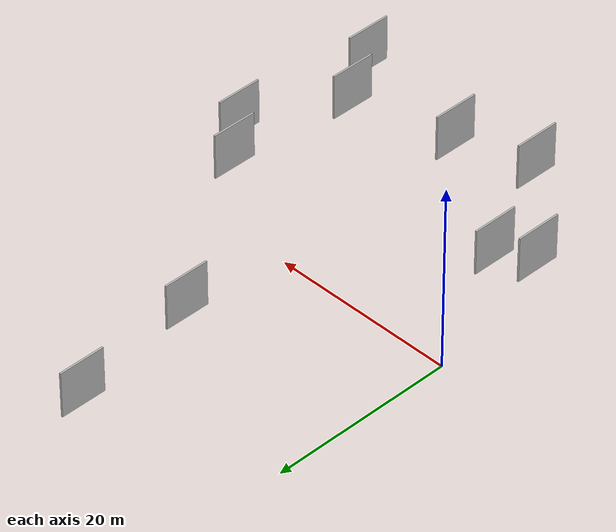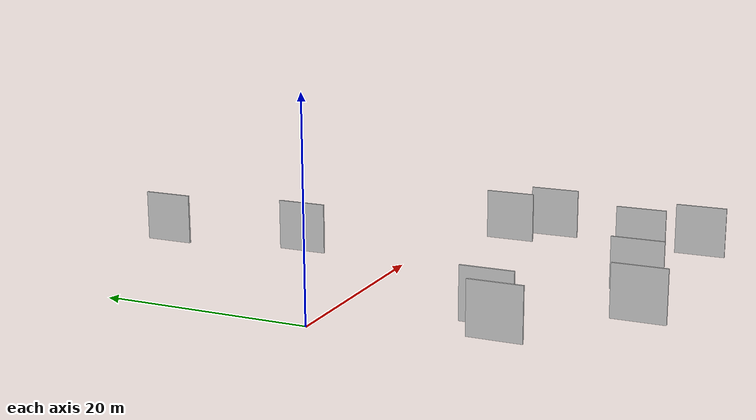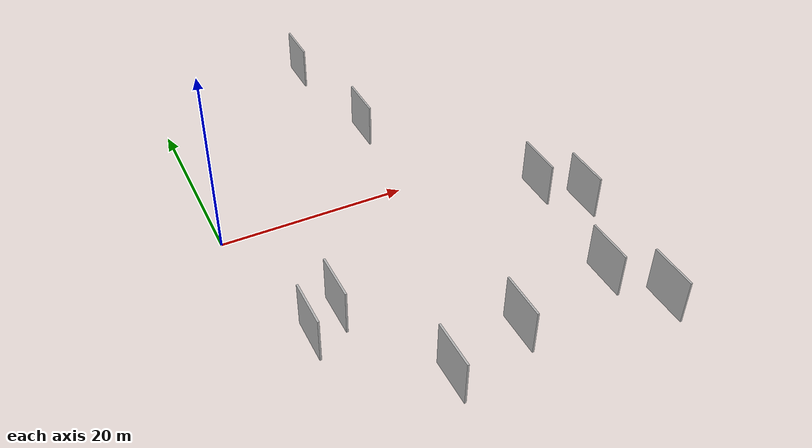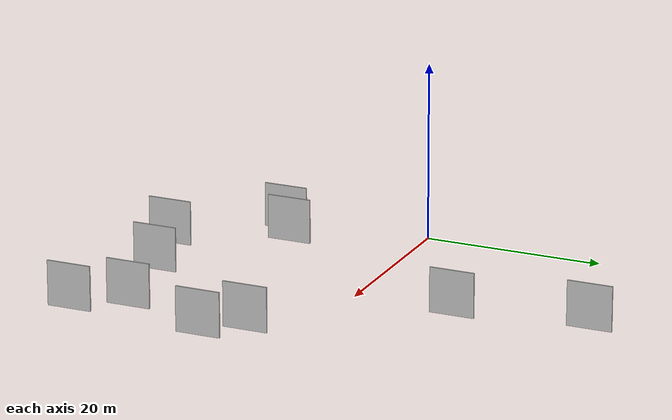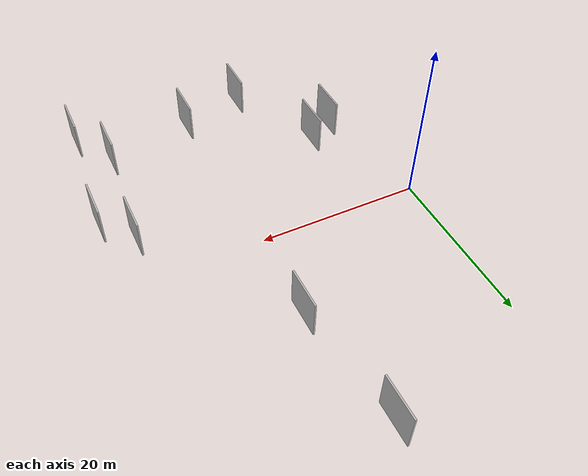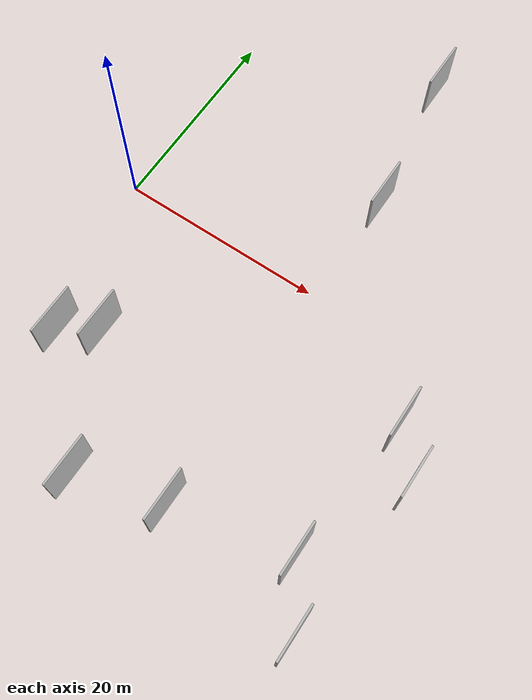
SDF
<sdf version="1.6">
 <world name="default">
  <scene>
   <sky><clouds><speed>12</speed></clouds></sky>
   <ambient>0.4 0.4 0.4 1</ambient>
   <background>0.7 0.7 0.7 1</background>
   <shadows>1</shadows>
  </scene>
  <gravity>0 0 -9.8066</gravity>
  <magnetic_field>6e-06 2.3e-05 -4.2e-05</magnetic_field>
  <physics default="0" name="default_physics" type="ode">
   <ode>
    <solver>
     <type>quick</type>
     <iters>10</iters>
     <sor>1.0</sor>
     <use_dynamic_moi_rescaling>0</use_dynamic_moi_rescaling>
    </solver>
    <constraints>
     <cfm>0</cfm>
     <erp>0.2</erp>
     <contact_max_correcting_vel>100</contact_max_correcting_vel>
     <contact_surface_layer>0.001</contact_surface_layer>
    </constraints>
   </ode>
   <max_step_size>0.004</max_step_size>
   <real_time_factor>1</real_time_factor>
   <real_time_update_rate>250</real_time_update_rate>
  </physics>
  <light name="sun" type="directional">
   <pose>0 0 10 0 0 0</pose>
   <diffuse>0.8 0.8 0.8 1</diffuse>
   <specular>0.2 0.2 0.2 1</specular>
   <attenuation>
    <range>1000</range>
    <constant>0.9</constant>
    <linear>0.01</linear>
    <quadratic>0.001</quadratic>
   </attenuation>
   <direction>-0.5 0.1 -0.9</direction>
  </light>
  <model name="grey_wall_1">
   <static>1</static>
   <pose>12.5830 -25.3363 0.0 0.000000 0.000000 1.570796</pose>
   <link name="link">
    <pose>0 0 2.50 0 0 0</pose>
    <collision name="collision"><geometry><box><size>5.00 0.2 5.00</size></box></geometry></collision>
    <visual name="visual">
     <cast_shadows>0</cast_shadows>
     <geometry><box><size>5.00 0.2 5.00</size></box></geometry>
     <material>
      <script>
       <uri>model://HANNAS_wall/materials/scripts</uri>
       <uri>model://HANNAS_wall/materials/textures</uri>
       <name>vrc/HANNAS_wall</name>
      </script>
     </material>
    </visual>
   </link>
  </model>
  <model name="grey_wall_2">
   <static>1</static>
   <pose>3.3106 -15.6818 0.0 0.000000 0.000000 1.570796</pose>
   <link name="link">
    <pose>0 0 2.50 0 0 0</pose>
    <collision name="collision"><geometry><box><size>5.00 0.2 5.00</size></box></geometry></collision>
    <visual name="visual">
     <cast_shadows>0</cast_shadows>
     <geometry><box><size>5.00 0.2 5.00</size></box></geometry>
     <material>
      <script>
       <uri>model://HANNAS_wall/materials/scripts</uri>
       <uri>model://HANNAS_wall/materials/textures</uri>
       <name>vrc/HANNAS_wall</name>
      </script>
     </material>
    </visual>
   </link>
  </model>
  <model name="grey_wall_3">
   <static>1</static>
   <pose>31.9580 -20.6161 0.0 0.000000 0.000000 1.570796</pose>
   <link name="link">
    <pose>0 0 2.50 0 0 0</pose>
    <collision name="collision"><geometry><box><size>5.00 0.2 5.00</size></box></geometry></collision>
    <visual name="visual">
     <cast_shadows>0</cast_shadows>
     <geometry><box><size>5.00 0.2 5.00</size></box></geometry>
     <material>
      <script>
       <uri>model://HANNAS_wall/materials/scripts</uri>
       <uri>model://HANNAS_wall/materials/textures</uri>
       <name>vrc/HANNAS_wall</name>
      </script>
     </material>
    </visual>
   </link>
  </model>
  <model name="grey_wall_4">
   <static>1</static>
   <pose>33.2869 -6.4464 0.0 0.000000 0.000000 1.570796</pose>
   <link name="link">
    <pose>0 0 2.50 0 0 0</pose>
    <collision name="collision"><geometry><box><size>5.00 0.2 5.00</size></box></geometry></collision>
    <visual name="visual">
     <cast_shadows>0</cast_shadows>
     <geometry><box><size>5.00 0.2 5.00</size></box></geometry>
     <material>
      <script>
       <uri>model://HANNAS_wall/materials/scripts</uri>
       <uri>model://HANNAS_wall/materials/textures</uri>
       <name>vrc/HANNAS_wall</name>
      </script>
     </material>
    </visual>
   </link>
  </model>
  <model name="grey_wall_5">
   <static>1</static>
   <pose>18.5730 25.9055 0.0 0.000000 0.000000 1.570796</pose>
   <link name="link">
    <pose>0 0 2.50 0 0 0</pose>
    <collision name="collision"><geometry><box><size>5.00 0.2 5.00</size></box></geometry></collision>
    <visual name="visual">
     <cast_shadows>0</cast_shadows>
     <geometry><box><size>5.00 0.2 5.00</size></box></geometry>
     <material>
      <script>
       <uri>model://HANNAS_wall/materials/scripts</uri>
       <uri>model://HANNAS_wall/materials/textures</uri>
       <name>vrc/HANNAS_wall</name>
      </script>
     </material>
    </visual>
   </link>
  </model>
  <model name="grey_wall_6">
   <static>1</static>
   <pose>6.7655 -13.6830 0.0 0.000000 0.000000 1.570796</pose>
   <link name="link">
    <pose>0 0 2.50 0 0 0</pose>
    <collision name="collision"><geometry><box><size>5.00 0.2 5.00</size></box></geometry></collision>
    <visual name="visual">
     <cast_shadows>0</cast_shadows>
     <geometry><box><size>5.00 0.2 5.00</size></box></geometry>
     <material>
      <script>
       <uri>model://HANNAS_wall/materials/scripts</uri>
       <uri>model://HANNAS_wall/materials/textures</uri>
       <name>vrc/HANNAS_wall</name>
      </script>
     </material>
    </visual>
   </link>
  </model>
  <model name="grey_wall_7">
   <static>1</static>
   <pose>20.7426 11.4200 0.0 0.000000 0.000000 1.570796</pose>
   <link name="link">
    <pose>0 0 2.50 0 0 0</pose>
    <collision name="collision"><geometry><box><size>5.00 0.2 5.00</size></box></geometry></collision>
    <visual name="visual">
     <cast_shadows>0</cast_shadows>
     <geometry><box><size>5.00 0.2 5.00</size></box></geometry>
     <material>
      <script>
       <uri>model://HANNAS_wall/materials/scripts</uri>
       <uri>model://HANNAS_wall/materials/textures</uri>
       <name>vrc/HANNAS_wall</name>
      </script>
     </material>
    </visual>
   </link>
  </model>
  <model name="grey_wall_8">
   <static>1</static>
   <pose>35.1631 -25.9035 0.0 0.000000 0.000000 1.570796</pose>
   <link name="link">
    <pose>0 0 2.50 0 0 0</pose>
    <collision name="collision"><geometry><box><size>5.00 0.2 5.00</size></box></geometry></collision>
    <visual name="visual">
     <cast_shadows>0</cast_shadows>
     <geometry><box><size>5.00 0.2 5.00</size></box></geometry>
     <material>
      <script>
       <uri>model://HANNAS_wall/materials/scripts</uri>
       <uri>model://HANNAS_wall/materials/textures</uri>
       <name>vrc/HANNAS_wall</name>
      </script>
     </material>
    </visual>
   </link>
  </model>
  <model name="grey_wall_9">
   <static>1</static>
   <pose>36.5978 -10.2498 0.0 0.000000 0.000000 1.570796</pose>
   <link name="link">
    <pose>0 0 2.50 0 0 0</pose>
    <collision name="collision"><geometry><box><size>5.00 0.2 5.00</size></box></geometry></collision>
    <visual name="visual">
     <cast_shadows>0</cast_shadows>
     <geometry><box><size>5.00 0.2 5.00</size></box></geometry>
     <material>
      <script>
       <uri>model://HANNAS_wall/materials/scripts</uri>
       <uri>model://HANNAS_wall/materials/textures</uri>
       <name>vrc/HANNAS_wall</name>
      </script>
     </material>
    </visual>
   </link>
  </model>
  <model name="grey_wall_10">
   <static>1</static>
   <pose>20.8201 -23.0774 0.0 0.000000 0.000000 1.570796</pose>
   <link name="link">
    <pose>0 0 2.50 0 0 0</pose>
    <collision name="collision"><geometry><box><size>5.00 0.2 5.00</size></box></geometry></collision>
    <visual name="visual">
     <cast_shadows>0</cast_shadows>
     <geometry><box><size>5.00 0.2 5.00</size></box></geometry>
     <material>
      <script>
       <uri>model://HANNAS_wall/materials/scripts</uri>
       <uri>model://HANNAS_wall/materials/textures</uri>
       <name>vrc/HANNAS_wall</name>
      </script>
     </material>
    </visual>
   </link>
  </model>
 </world>
</sdf>
